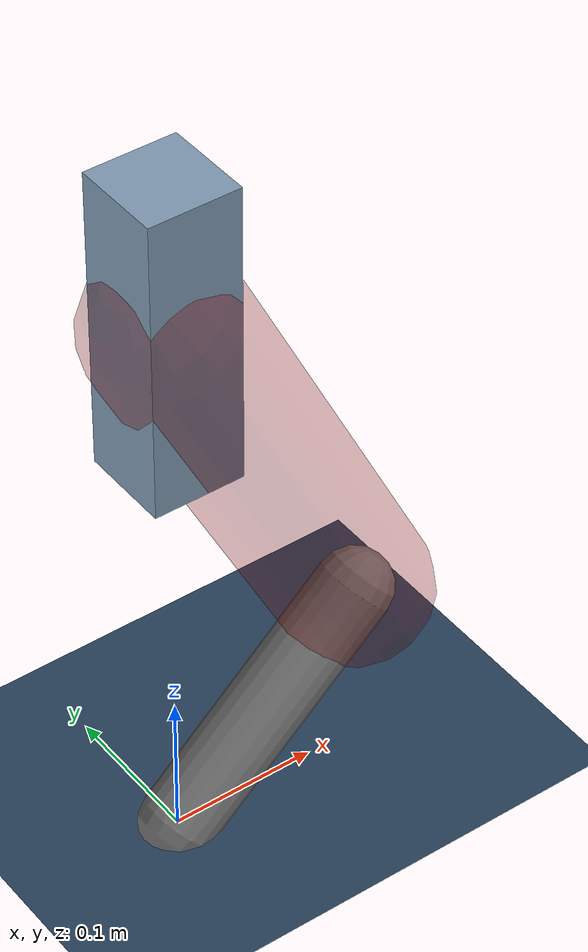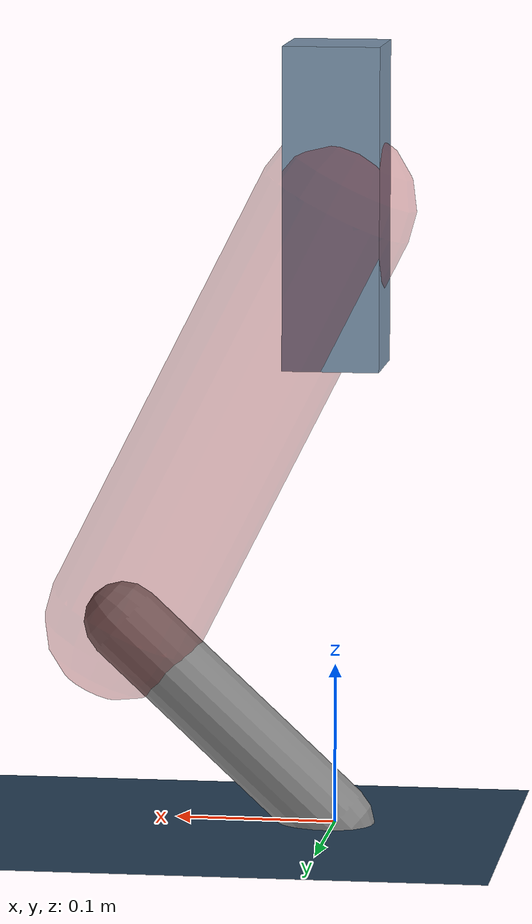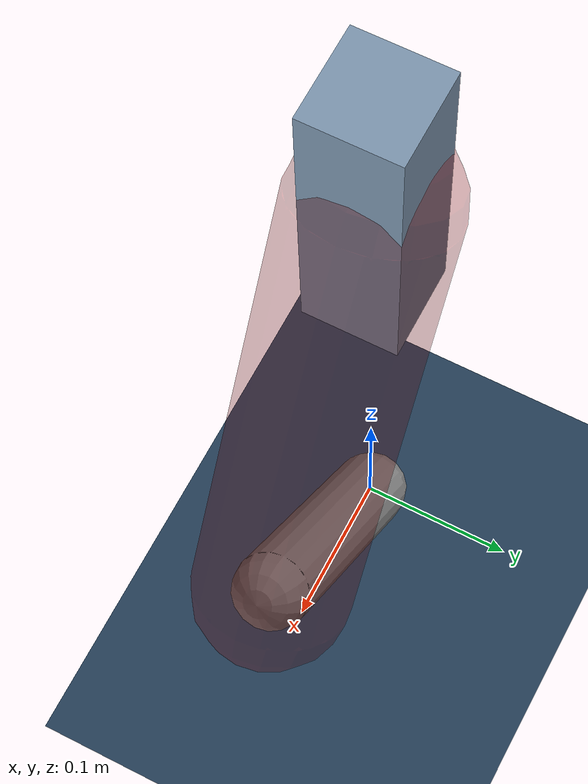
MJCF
<mujoco model="Hopper2D">
	<compiler inertiafromgeom="true" angle="radian" />
	<option timestep="0.001" integrator="implicit" cone="elliptic" solver="Newton" tolerance="1e-10" />

	<default>
		<geom contype="1" conaffinity="1" condim="3" friction="2 0.005 0.0001" solref="0.005 1" />
		<joint limited="true" damping="0.1" />
	</default>

	<asset>
		<texture name="skybox" type="skybox" builtin="gradient" rgb1=".4 .6 .8" rgb2="0 0 0" width="800" height="800" />
		<texture name="grid" type="2d" builtin="checker" rgb1=".1 .2 .3" rgb2=".2 .3 .4" width="300" height="300" mark="edge" markrgb=".2 .3 .4" />
		<material name="ground" texture="grid" texrepeat="1 1" texuniform="true" reflectance="0.1" />
		<material name="leg" rgba="0.5 0.6 0.7 1" />
	</asset>

	<worldbody>

		<geom name="floor" type="plane" size="5 5 0.25" material="ground" />

		<light directional="false" diffuse="0.8 0.8 0.8" specular="0.3 0.3 0.3" pos="0 0 2" dir="0 0 -1" />
		<light mode="targetbodycom" target="base" directional="false" diffuse="0.8 0.8 0.8" specular="0.3 0.3 0.3" pos="0 0 2" dir="0 0 -1" />

		<camera name="fixed" pos="0 -2 1" xyaxes="1 0 0 0 0 1" />
		<camera name="tracking" mode="trackcom" pos="0 -3 1" />

		<body name="root" pos="0 0 0.38804876616353523">
			<joint name="slide_x" type="slide" axis="1 0 0" range="-100 100" />
			<joint name="slide_z" type="slide" axis="0 0 1" range="0 10" />

			<body name="base" pos="0 0 0">
				<geom name="torso" type="box" size="0.03 0.03 0.1" mass="1.441" material="leg" />

				<body name="link1" pos="0 0 0" euler="0 1.1024833737774995 0">
					<joint type="hinge" axis="0 -1 0" pos="0 0 0" name="hinge1" limited="true" range="-3.14 3.14" stiffness="0" damping="0.1" />
					<geom name="thigh" type="capsule" fromto="0 0 0 0.2956485523103277 0 0" size="0.05" rgba="0.5 0 0 0.3" mass="0.9769862360068521" />

					<body name="link2" pos="0.2956485523103277 0 0" euler="0 1.289468215661218 0">
						<joint type="hinge" axis="0 -1 0" pos="0 0 0" name="hinge2" limited="true" range="-3.14 3.14" stiffness="0" damping="0.1" />
						<geom name="shank" type="capsule" fromto="0 0 0 0.18232571211576795 0 0" size="0.025" mass="0.3858931409041912" />

					</body>
				</body>
			</body>
		</body>
	</worldbody>

	<actuator>
		<motor name="torque1" joint="hinge1" ctrlrange="-15.47489765236033 15.47489765236033" ctrllimited="true" gear="1" />
		<motor name="torque2" joint="hinge2" ctrlrange="-12.14376237152425 12.14376237152425" ctrllimited="true" gear="1" />
	</actuator>
</mujoco>
